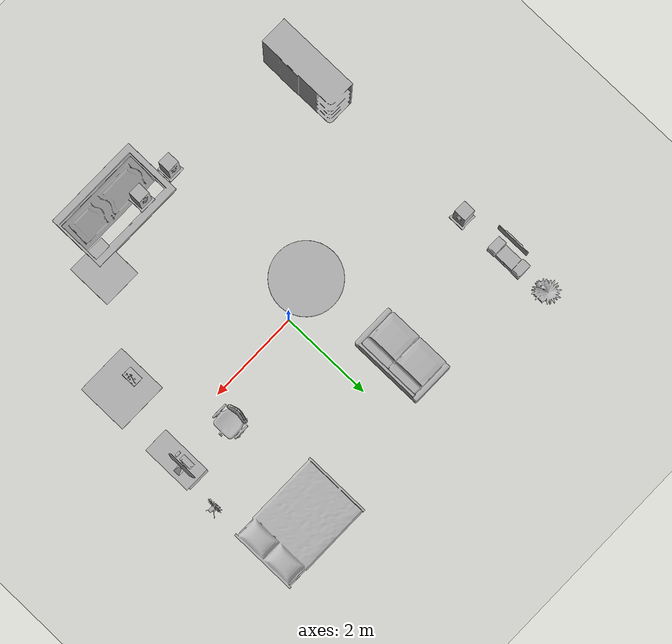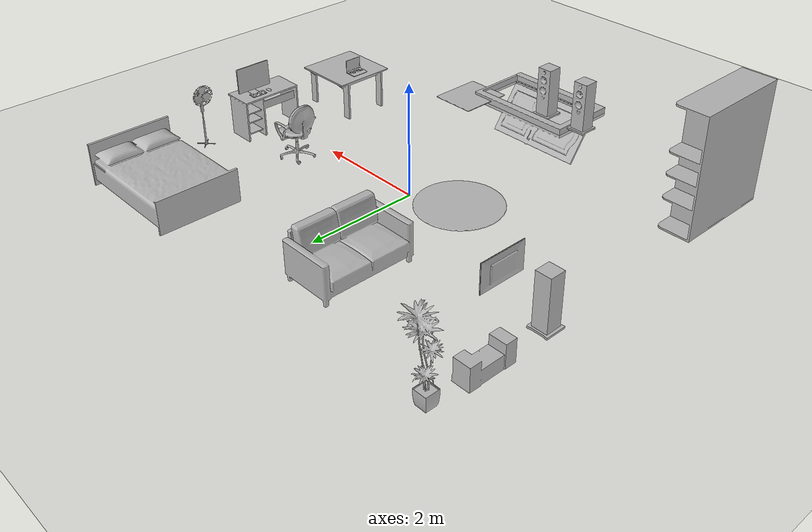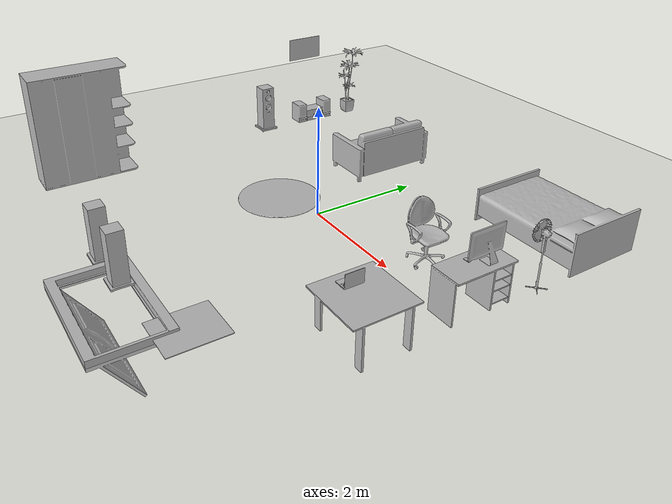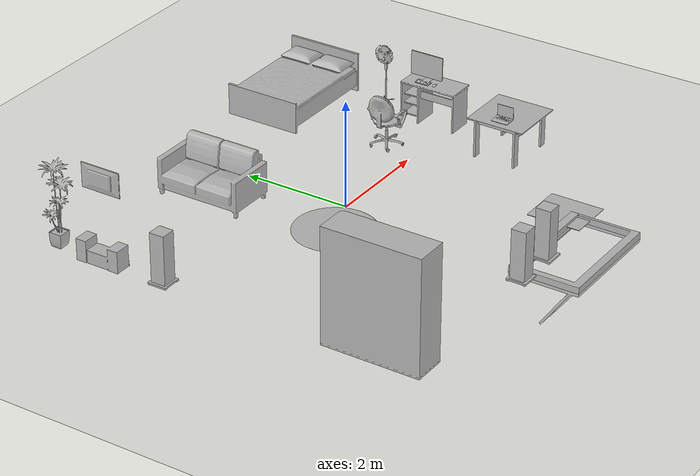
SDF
<sdf version="1.4">
 <world name="default">
  <light name="sun" type="directional">
   <pose>0 0 10 0 -0 0</pose>
   <diffuse>0.8 0.8 0.8 1</diffuse>
   <specular>0.2 0.2 0.2 1</specular>
   <attenuation>
    <range>1000</range>
    <constant>0.9</constant>
    <linear>0.01</linear>
    <quadratic>0.001</quadratic>
   </attenuation>
   <direction>-0.5 0.1 -0.9</direction>
  </light>
  <model name="ground_plane">
   <static>1</static>
   <link name="link">
    <collision name="collision">
     <geometry><plane><normal>0 0 1</normal><size>100 100</size></plane></geometry>
     <surface><friction><ode><mu>100</mu><mu2>50</mu2></ode></friction></surface>
    </collision>
    <visual name="visual">
     <cast_shadows>0</cast_shadows>
     <geometry><plane><normal>0 0 1</normal><size>100 100</size></plane></geometry>
     <material>
      <script><uri>file://media/materials/scripts/gazebo.material</uri><name>Gazebo/Grey</name></script>
     </material>
    </visual>
    <velocity_decay><linear>0</linear><angular>0</angular></velocity_decay>
   </link>
  </model>
  <physics type="ode">
   <max_step_size>0.001</max_step_size>
   <real_time_factor>1</real_time_factor>
   <real_time_update_rate>1000</real_time_update_rate>
   <gravity>0 0 -9.8</gravity>
  </physics>
  <scene><ambient>0.4 0.4 0.4 1</ambient><background>0.7 0.7 0.7 1</background><shadows>1</shadows></scene>
  <spherical_coordinates>
   <surface_model>EARTH_WGS84</surface_model>
   <latitude_deg>0</latitude_deg>
   <longitude_deg>0</longitude_deg>
   <elevation>0</elevation>
   <heading_deg>0</heading_deg>
  </spherical_coordinates>
  <model name="403_0">
   <pose>2.68702 2.87697 0.05 0 -0 3.14159</pose>
   <static>1</static>
   <link name="link">
    <collision name="collision"><geometry><box><size>2.07001 1.46005 2</size></box></geometry></collision>
    <visual name="visual"><geometry><mesh><uri>model://403/403.dae</uri></mesh></geometry></visual>
    <velocity_decay><linear>0</linear><angular>0</angular></velocity_decay>
   </link>
  </model>
  <model name="57_0">
   <pose>-0.98631 2.06698 0.05 0 0 -3.14159</pose>
   <static>1</static>
   <link name="link">
    <collision name="collision"><geometry><box><size>0.969847 1.65014 2</size></box></geometry></collision>
    <visual name="visual"><geometry><mesh><uri>model://57/57.dae</uri></mesh></geometry></visual>
    <velocity_decay><linear>0</linear><angular>0</angular></velocity_decay>
   </link>
  </model>
  <model name="218_0">
   <pose>-3.79995 2.2305 0.06 0 -0 0</pose>
   <static>1</static>
   <link name="link">
    <collision name="collision"><geometry><box><size>0.318 0.84 2</size></box></geometry></collision>
    <visual name="visual"><geometry><mesh><uri>model://218/218.dae</uri></mesh></geometry></visual>
    <velocity_decay><linear>0</linear><angular>0</angular></velocity_decay>
   </link>
  </model>
  <model name="153_0">
   <pose>1.8019 -3.24669 0.05 0 -0 0</pose>
   <static>1</static>
   <link name="link">
    <collision name="collision"><geometry><box><size>0.86 1 0</size></box></geometry></collision>
    <visual name="visual"><geometry><mesh><uri>model://153/153.dae</uri></mesh></geometry></visual>
    <velocity_decay><linear>0</linear><angular>0</angular></velocity_decay>
   </link>
  </model>
  <model name="s__1647_0">
   <pose>-0.813906 -0.325494 0.05 0 -0 0</pose>
   <static>1</static>
   <link name="link">
    <collision name="collision"><geometry><box><size>1.5 1.5 0</size></box></geometry></collision>
    <visual name="visual"><geometry><mesh><uri>model://s__1647/s__1647.dae</uri></mesh></geometry></visual>
    <velocity_decay><linear>0</linear><angular>0</angular></velocity_decay>
   </link>
  </model>
  <model name="111_0">
   <pose>-3.92972 2.11051 1.45 0 -0 0</pose>
   <static>1</static>
   <link name="link">
    <collision name="collision"><geometry><box><size>0.047027 0.76016 2</size></box></geometry></collision>
    <visual name="visual"><geometry><mesh><uri>model://111/111.dae</uri></mesh></geometry></visual>
    <velocity_decay><linear>0</linear><angular>0</angular></velocity_decay>
   </link>
  </model>
  <model name="105_0">
   <pose>3.46148 0.358506 0.05 0 -0 0</pose>
   <static>1</static>
   <link name="link">
    <collision name="collision"><geometry><box><size>0.55 1.1 2</size></box></geometry></collision>
    <visual name="visual"><geometry><mesh><uri>model://105/105.dae</uri></mesh></geometry></visual>
    <velocity_decay><linear>0</linear><angular>0</angular></velocity_decay>
   </link>
  </model>
  <model name="335_0">
   <pose>2.23568 0.586507 0.05 0 -0 0</pose>
   <static>1</static>
   <link name="link">
    <collision name="collision"><geometry><box><size>0.599914 0.62 2</size></box></geometry></collision>
    <visual name="visual"><geometry><mesh><uri>model://335/335.dae</uri></mesh></geometry></visual>
    <velocity_decay><linear>0</linear><angular>0</angular></velocity_decay>
   </link>
  </model>
  <model name="s__1925_0">
   <pose>3.20526 -1.33915 0.05 0 -0 0</pose>
   <static>1</static>
   <link name="link">
    <collision name="collision"><geometry><box><size>1.1 1.1 2</size></box></geometry></collision>
    <visual name="visual"><geometry><mesh><uri>model://s__1925/s__1925.dae</uri></mesh></geometry></visual>
    <velocity_decay><linear>0</linear><angular>0</angular></velocity_decay>
   </link>
  </model>
  <model name="189_0">
   <pose>3.46154 0.534955 0.802224 0 -0 3.14159</pose>
   <static>1</static>
   <link name="link">
    <collision name="collision"><geometry><box><size>0.359507 0.6495 2</size></box></geometry></collision>
    <visual name="visual"><geometry><mesh><uri>model://189/189.dae</uri></mesh></geometry></visual>
    <velocity_decay><linear>0</linear><angular>0</angular></velocity_decay>
   </link>
  </model>
  <model name="120_0">
   <pose>2.90167 -1.35266 0.774 0 -0 3.14159</pose>
   <static>1</static>
   <link name="link">
    <collision name="collision"><geometry><box><size>0.225973 0.32 2</size></box></geometry></collision>
    <visual name="visual"><geometry><mesh><uri>model://120/120.dae</uri></mesh></geometry></visual>
    <velocity_decay><linear>0</linear><angular>0</angular></velocity_decay>
   </link>
  </model>
  <model name="73_0">
   <pose>1.79757 -4.01003 0.02 0 -0 1.5708</pose>
   <static>1</static>
   <link name="link">
    <collision name="collision"><geometry><box><size>1.0004 1.30004 2</size></box></geometry></collision>
    <visual name="visual"><geometry><mesh><uri>model://73/73.dae</uri></mesh></geometry></visual>
    <velocity_decay><linear>0</linear><angular>0</angular></velocity_decay>
   </link>
  </model>
  <model name="623_0">
   <pose>-3.69899 3.22651 0.05 0 -0 0</pose>
   <static>1</static>
   <link name="link">
    <collision name="collision"><geometry><box><size>0.529798 0.561408 2</size></box></geometry></collision>
    <visual name="visual"><geometry><mesh><uri>model://623/623.dae</uri></mesh></geometry></visual>
    <velocity_decay><linear>0</linear><angular>0</angular></velocity_decay>
   </link>
  </model>
  <model name="42_0">
   <pose>-3.61088 -2.98514 0.05 0 -0 0</pose>
   <static>1</static>
   <link name="link">
    <collision name="collision"><geometry><box><size>0.610353 1.8 2</size></box></geometry></collision>
    <visual name="visual"><geometry><mesh><uri>model://42/42.dae</uri></mesh></geometry></visual>
    <velocity_decay><linear>0</linear><angular>0</angular></velocity_decay>
   </link>
  </model>
  <model name="226_0">
   <pose>3.64827 1.50748 0.05 0 -0 3.14159</pose>
   <static>1</static>
   <link name="link">
    <collision name="collision"><geometry><box><size>0.229955 0.369998 2</size></box></geometry></collision>
    <visual name="visual"><geometry><mesh><uri>model://226/226.dae</uri></mesh></geometry></visual>
    <velocity_decay><linear>0</linear><angular>0</angular></velocity_decay>
   </link>
  </model>
  <model name="278_0">
   <pose>-3.77944 1.02844 0.05 0 -0 0</pose>
   <static>1</static>
   <link name="link">
    <collision name="collision"><geometry><box><size>0.366852 0.366852 2</size></box></geometry></collision>
    <visual name="visual"><geometry><mesh><uri>model://278/278.dae</uri></mesh></geometry></visual>
    <velocity_decay><linear>0</linear><angular>0</angular></velocity_decay>
   </link>
  </model>
  <model name="278_1">
   <pose>0.291093 -3.69852 0.05 0 -0 1.5708</pose>
   <static>1</static>
   <link name="link">
    <collision name="collision"><geometry><box><size>0.366852 0.366852 2</size></box></geometry></collision>
    <visual name="visual"><geometry><mesh><uri>model://278/278.dae</uri></mesh></geometry></visual>
    <velocity_decay><linear>0</linear><angular>0</angular></velocity_decay>
   </link>
  </model>
  <model name="278_2">
   <pose>-0.524974 -3.71046 0.05 0 -0 1.5708</pose>
   <static>1</static>
   <link name="link">
    <collision name="collision"><geometry><box><size>0.366852 0.366852 2</size></box></geometry></collision>
    <visual name="visual"><geometry><mesh><uri>model://278/278.dae</uri></mesh></geometry></visual>
    <velocity_decay><linear>0</linear><angular>0</angular></velocity_decay>
   </link>
  </model>
 </world>
</sdf>
